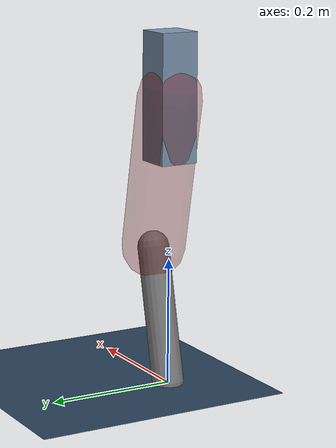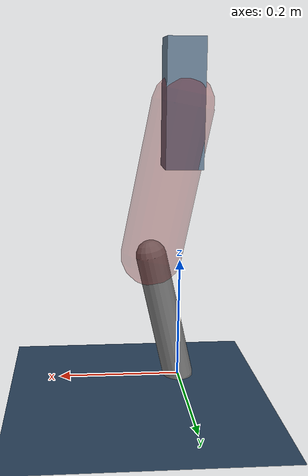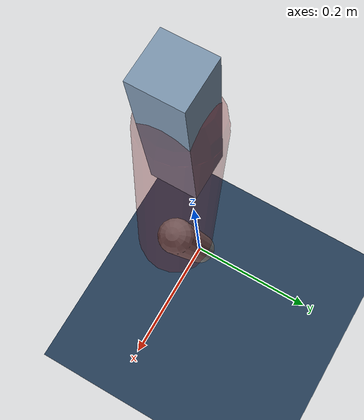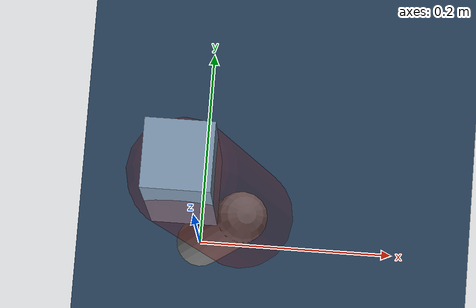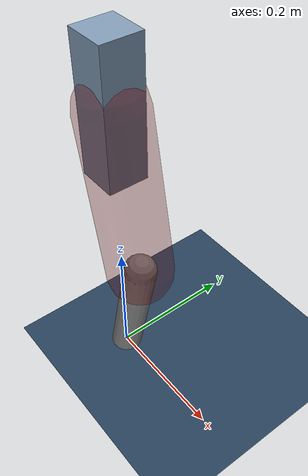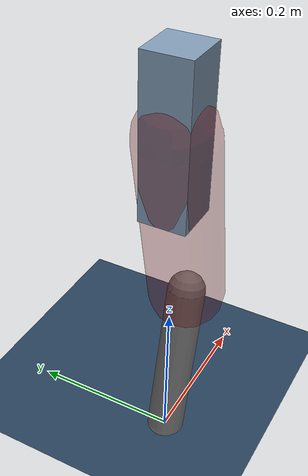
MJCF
<mujoco model="Hopper2D">
	<compiler inertiafromgeom="true" angle="radian" />
	<option timestep="0.001" integrator="implicit" cone="elliptic" solver="Newton" tolerance="1e-10" />

	<default>
		<geom contype="1" conaffinity="1" condim="3" friction="2 0.005 0.0001" solref="0.005 1" />
		<joint limited="true" damping="0.1" />
	</default>

	<asset>
		<texture name="skybox" type="skybox" builtin="gradient" rgb1=".4 .6 .8" rgb2="0 0 0" width="800" height="800" />
		<texture name="grid" type="2d" builtin="checker" rgb1=".1 .2 .3" rgb2=".2 .3 .4" width="300" height="300" mark="edge" markrgb=".2 .3 .4" />
		<material name="ground" texture="grid" texrepeat="1 1" texuniform="true" reflectance="0.1" />
		<material name="leg" rgba="0.5 0.6 0.7 1" />
	</asset>

	<worldbody>

		<geom name="floor" type="plane" size="5 5 0.25" material="ground" />

		<light directional="false" diffuse="0.8 0.8 0.8" specular="0.3 0.3 0.3" pos="0 0 2" dir="0 0 -1" />
		<light mode="targetbodycom" target="base" directional="false" diffuse="0.8 0.8 0.8" specular="0.3 0.3 0.3" pos="0 0 2" dir="0 0 -1" />

		<camera name="fixed" pos="0 -2 1" xyaxes="1 0 0 0 0 1" />
		<camera name="tracking" mode="trackcom" pos="0 -3 1" />

		<body name="root" pos="0 0 0.4537796935063962">
			<joint name="slide_x" type="slide" axis="1 0 0" range="-100 100" />
			<joint name="slide_z" type="slide" axis="0 0 1" range="0 10" />

			<body name="base" pos="0 0 0">
				<geom name="torso" type="box" size="0.03 0.03 0.1" mass="2.001" material="leg" />

				<body name="link1" pos="0 0 0" euler="0 1.376866321824365 0">
					<joint type="hinge" axis="0 -1 0" pos="0 0 0" name="hinge1" limited="true" range="-3.14 3.14" stiffness="0" damping="0.1" />
					<geom name="thigh" type="capsule" fromto="0 0 0 0.24790385490843136 0 0" size="0.05" rgba="0.5 0 0 0.3" mass="0.8509500227619216" />

					<body name="link2" pos="0.24790385490843136 0 0" euler="0 0.41708631229855136 0">
						<joint type="hinge" axis="0 -1 0" pos="0 0 0" name="hinge2" limited="true" range="-3.14 3.14" stiffness="0" damping="0.1" />
						<geom name="shank" type="capsule" fromto="0 0 0 0.21587583859796483 0 0" size="0.025" mass="0.41420067087837187" />

					</body>
				</body>
			</body>
		</body>
	</worldbody>

	<actuator>
		<motor name="torque1" joint="hinge1" ctrlrange="-28.699386476299782 28.699386476299782" ctrllimited="true" gear="1" />
		<motor name="torque2" joint="hinge2" ctrlrange="-58.47103031499724 58.47103031499724" ctrllimited="true" gear="1" />
	</actuator>
</mujoco>
